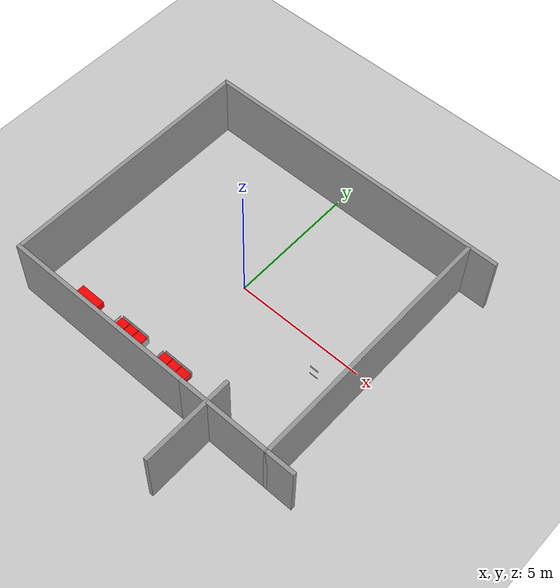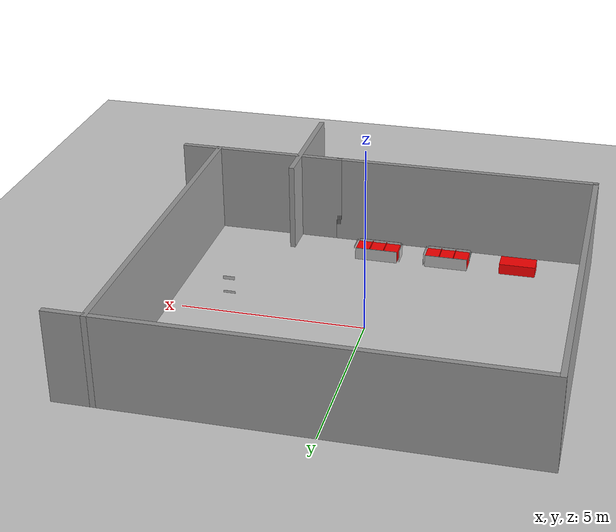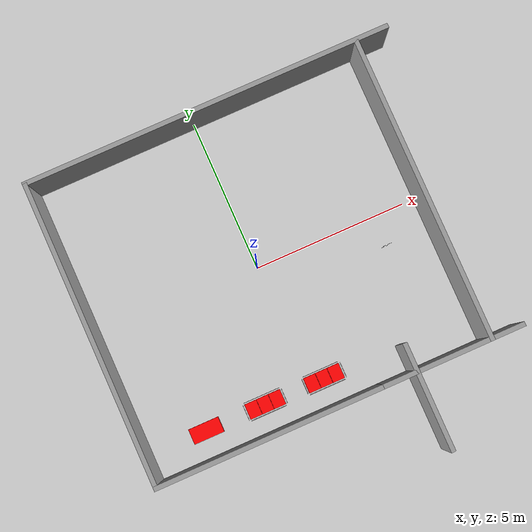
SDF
<sdf version="1.7">
 <world name="default">
  <light name="sun" type="directional">
   <pose>0 0 10 0 -0 0</pose>
   <diffuse>0.8 0.8 0.8 1</diffuse>
   <specular>0.2 0.2 0.2 1</specular>
   <attenuation>
    <range>1000</range>
    <constant>0.9</constant>
    <linear>0.01</linear>
    <quadratic>0.001</quadratic>
   </attenuation>
   <direction>-0.5 0.1 -0.9</direction>
   <spot><inner_angle>0</inner_angle><outer_angle>0</outer_angle><falloff>0</falloff></spot>
  </light>
  <model name="ground_plane">
   <static>1</static>
   <link name="link">
    <collision name="collision">
     <geometry><plane><normal>0 0 1</normal><size>100 100</size></plane></geometry>
     <surface>
      <contact><collide_bitmask>65535</collide_bitmask></contact>
      <friction><ode><mu>100</mu><mu2>50</mu2></ode></friction>
     </surface>
    </collision>
    <visual name="visual">
     <cast_shadows>0</cast_shadows>
     <geometry><plane><normal>0 0 1</normal><size>100 100</size></plane></geometry>
     <material>
      <script><uri>file://media/materials/scripts/gazebo.material</uri><name>Gazebo/Grey</name></script>
     </material>
    </visual>
   </link>
  </model>
  <gravity>0 0 -9.8</gravity>
  <magnetic_field>6e-06 2.3e-05 -4.2e-05</magnetic_field>
  <atmosphere type="adiabatic"/>
  <physics type="ode">
   <max_step_size>0.001</max_step_size>
   <real_time_factor>1</real_time_factor>
   <real_time_update_rate>1000</real_time_update_rate>
  </physics>
  <scene><ambient>0.4 0.4 0.4 1</ambient><background>0.7 0.7 0.7 1</background><shadows>1</shadows></scene>
  <spherical_coordinates>
   <surface_model>EARTH_WGS84</surface_model>
   <latitude_deg>0</latitude_deg>
   <longitude_deg>0</longitude_deg>
   <elevation>0</elevation>
   <heading_deg>0</heading_deg>
  </spherical_coordinates>
  <model name="Untitled_0">
   <pose>0.028612 0.015 0 0 -0 0</pose>
   <link name="Wall_1">
    <collision name="Wall_1_Collision">
     <geometry><box><size>3.5 0.15 2.5</size></box></geometry>
     <pose>0.75 1 1.25 0 -0 0</pose>
    </collision>
    <visual name="Wall_1_Visual">
     <pose>0.75 1 1.25 0 -0 0</pose>
     <geometry><box><size>3.5 0.15 2.5</size></box></geometry>
     <material>
      <script><uri>file://media/materials/scripts/gazebo.material</uri><name>Gazebo/Grey</name></script>
      <ambient>1 1 1 1</ambient>
     </material>
     <meta><layer>0</layer></meta>
    </visual>
    <pose>2.0 -5.0 0 0 -0 -1.5708</pose>
   </link>
   <link name="Wall_2">
    <collision name="Wall_2_Collision">
     <geometry><box><size>4.74979 0.15 2.5</size></box></geometry>
     <pose>0.5 0 1.25 0 -0 0</pose>
    </collision>
    <visual name="Wall_2_Visual">
     <pose>0.5 0 1.25 0 -0 0</pose>
     <geometry><box><size>4.74979 0.15 2.5</size></box></geometry>
     <material>
      <script><uri>file://media/materials/scripts/gazebo.material</uri><name>Gazebo/Grey</name></script>
      <ambient>1 1 1 1</ambient>
     </material>
     <meta><layer>0</layer></meta>
    </visual>
    <pose>3.62512 -4.925 0 0 -0 0</pose>
   </link>
   <link name="Wall_3">
    <collision name="Wall_3_Collision">
     <geometry><box><size>10 0.15 2.5</size></box></geometry>
     <pose>0 0 1.25 0 -0 0</pose>
    </collision>
    <visual name="Wall_3_Visual">
     <pose>0 0 1.25 0 -0 0</pose>
     <geometry><box><size>10 0.15 2.5</size></box></geometry>
     <material>
      <script><uri>file://media/materials/scripts/gazebo.material</uri><name>Gazebo/Grey</name></script>
      <ambient>1 1 1 1</ambient>
     </material>
     <meta><layer>0</layer></meta>
    </visual>
    <pose>5.42499 0 0 0 -0 1.5708</pose>
   </link>
   <link name="Wall_4">
    <collision name="Wall_4_Collision">
     <geometry><box><size>12 0.15 2.5</size></box></geometry>
     <pose>-0.5 0 1.25 0 -0 0</pose>
    </collision>
    <visual name="Wall_4_Visual">
     <pose>-0.5 0 1.25 0 -0 0</pose>
     <geometry><box><size>12 0.15 2.5</size></box></geometry>
     <material>
      <script><uri>file://media/materials/scripts/gazebo.material</uri><name>Gazebo/Grey</name></script>
      <ambient>1 1 1 1</ambient>
     </material>
     <meta><layer>0</layer></meta>
    </visual>
    <pose>-5e-06 4.925 0 0 -0 3.14159</pose>
   </link>
   <link name="Wall_5">
    <collision name="Wall_5_Collision">
     <geometry><box><size>10 0.15 2.5</size></box></geometry>
     <pose>0 0 1.25 0 -0 0</pose>
    </collision>
    <visual name="Wall_5_Visual">
     <pose>0 0 1.25 0 -0 0</pose>
     <geometry><box><size>10 0.15 2.5</size></box></geometry>
     <material>
      <script><uri>file://media/materials/scripts/gazebo.material</uri><name>Gazebo/Grey</name></script>
      <ambient>1 1 1 1</ambient>
     </material>
     <meta><layer>0</layer></meta>
    </visual>
    <pose>-5.42501 0 0 0 -0 -1.5708</pose>
   </link>
   <link name="Wall_6">
    <collision name="Wall_6_Collision">
     <geometry><box><size>7.40028 0.15 2.5</size></box></geometry>
     <pose>0 0 1.25 0 -0 0</pose>
    </collision>
    <visual name="Wall_6_Visual">
     <pose>0 0 1.25 0 -0 0</pose>
     <geometry><box><size>7.40028 0.15 2.5</size></box></geometry>
     <material>
      <script><uri>file://media/materials/scripts/gazebo.material</uri><name>Gazebo/Grey</name></script>
      <ambient>1 1 1 1</ambient>
     </material>
     <meta><layer>0</layer></meta>
    </visual>
    <pose>-1.79988 -4.925 0 0 -0 0</pose>
   </link>
   <static>1</static>
  </model>
  <model name="pallet1">
   <link name="link_1">
    <pose>0.5 -4 0.15 0 0 1.57</pose>
    <visual name="visual">
     <geometry><box><size>0.5 1.2 0.3</size></box></geometry>
     <material><ambient>1 0 0 1</ambient><diffuse>1 0 0 1</diffuse><specular>0.5 0.5 0.5 1</specular></material>
    </visual>
    <collision name="collision"><geometry><box><size>0.5 1.2 0.3</size></box></geometry></collision>
   </link>
   <static>1</static>
  </model>
  <model name="pallet2_1">
   <link name="link_1">
    <pose>0.5 -3.7 0.175 0 0 1.57</pose>
    <visual name="visual"><geometry><box><size>0.01 1.2 0.35</size></box></geometry></visual>
    <collision name="collision"><geometry><box><size>0.01 1 0.5</size></box></geometry></collision>
   </link>
   <static>1</static>
  </model>
  <model name="pallet2_2">
   <link name="link_1">
    <pose>0.5 -4.3 0.175 0 0 1.57</pose>
    <visual name="visual"><geometry><box><size>0.01 1.2 0.35</size></box></geometry></visual>
    <collision name="collision"><geometry><box><size>0.01 1 0.5</size></box></geometry></collision>
   </link>
   <static>1</static>
  </model>
  <model name="pallet2_3">
   <link name="link_1">
    <pose>-0.15 -4.0 0.175 0 0 1.57</pose>
    <visual name="visual"><geometry><box><size>0.5 0.01 0.35</size></box></geometry></visual>
    <collision name="collision"><geometry><box><size>0.5 0.01 0.5</size></box></geometry></collision>
   </link>
   <static>1</static>
  </model>
  <model name="pallet2_4">
   <link name="link_1">
    <pose>0.3 -4.0 0.325 0 0 1.57</pose>
    <visual name="visual">
     <geometry><box><size>0.5 0.01 0.05</size></box></geometry>
     <material><ambient>1 0 0 1</ambient><diffuse>1 0 0 1</diffuse><specular>0.5 0.5 0.5 1</specular></material>
    </visual>
    <collision name="collision"><geometry><box><size>0.5 0.01 0.05</size></box></geometry></collision>
   </link>
   <static>1</static>
  </model>
  <model name="pallet2_5">
   <link name="link_1">
    <pose>0.7 -4.0 0.325 0 0 1.57</pose>
    <visual name="visual">
     <geometry><box><size>0.5 0.01 0.05</size></box></geometry>
     <material><ambient>1 0 0 1</ambient><diffuse>1 0 0 1</diffuse><specular>0.5 0.5 0.5 1</specular></material>
    </visual>
    <collision name="collision"><geometry><box><size>0.5 0.01 0.05</size></box></geometry></collision>
   </link>
   <static>1</static>
  </model>
  <model name="pallet2_6">
   <link name="link_1">
    <pose>1.15 -4.0 0.325 0 0 1.57</pose>
    <visual name="visual"><geometry><box><size>0.5 0.01 0.05</size></box></geometry></visual>
    <collision name="collision"><geometry><box><size>0.5 0.01 0.05</size></box></geometry></collision>
   </link>
   <static>1</static>
  </model>
  <model name="pallet3">
   <link name="link_1">
    <inertial><mass>100</mass><inertia><ixx>9.0833</ixx><iyy>2.8333</iyy><izz>10.4167</izz></inertia></inertial>
    <pose>-1.5 -4 0.15 0 0 1.57</pose>
    <visual name="visual">
     <geometry><box><size>0.5 1.2 0.3</size></box></geometry>
     <material><ambient>1 0 0 1</ambient><diffuse>1 0 0 1</diffuse><specular>0.5 0.5 0.5 1</specular></material>
    </visual>
    <collision name="collision">
     <geometry><box><size>0.5 1.2 0.3</size></box></geometry>
     <surface><bounce><restitution>0.0</restitution><threshold>1e-6</threshold></bounce></surface>
    </collision>
   </link>
   <static>1</static>
  </model>
  <model name="pallet4_1">
   <link name="link_1">
    <inertial><mass>100</mass><inertia><ixx>10.4167</ixx><iyy>2.1667</iyy><izz>8.4167</izz></inertia></inertial>
    <pose>-1.5 -3.7 0.175 0 0 1.57</pose>
    <visual name="visual"><geometry><box><size>0.01 1.2 0.35</size></box></geometry></visual>
    <collision name="collision"><geometry><box><size>0.01 1.2 0.35</size></box></geometry></collision>
   </link>
   <static>1</static>
  </model>
  <model name="pallet4_2">
   <link name="link_1">
    <inertial><mass>100</mass><inertia><ixx>10.4167</ixx><iyy>2.1667</iyy><izz>8.4167</izz></inertia></inertial>
    <pose>-1.5 -4.3 0.175 0 0 1.57</pose>
    <visual name="visual"><geometry><box><size>0.01 1.2 0.35</size></box></geometry></visual>
    <collision name="collision"><geometry><box><size>0.01 1.2 0.35</size></box></geometry></collision>
   </link>
   <static>1</static>
  </model>
  <model name="pallet4_3">
   <link name="link_1">
    <pose>-0.85 -4.0 0.175 0 0 1.57</pose>
    <visual name="visual"><geometry><box><size>0.5 0.01 0.35</size></box></geometry></visual>
    <collision name="collision"><geometry><box><size>0.5 0.01 0.5</size></box></geometry></collision>
   </link>
   <static>1</static>
  </model>
  <model name="pallet4_4">
   <link name="link_1">
    <pose>-1.3 -4.0 0.325 0 0 1.57</pose>
    <visual name="visual">
     <geometry><box><size>0.5 0.01 0.05</size></box></geometry>
     <material><ambient>1 0 0 1</ambient><diffuse>1 0 0 1</diffuse><specular>0.5 0.5 0.5 1</specular></material>
    </visual>
    <collision name="collision"><geometry><box><size>0.5 0.01 0.05</size></box></geometry></collision>
   </link>
   <static>1</static>
  </model>
  <model name="pallet4_5">
   <link name="link_1">
    <pose>-1.7 -4.0 0.325 0 0 1.57</pose>
    <visual name="visual">
     <geometry><box><size>0.5 0.01 0.05</size></box></geometry>
     <material><ambient>1 0 0 1</ambient><diffuse>1 0 0 1</diffuse><specular>0.5 0.5 0.5 1</specular></material>
    </visual>
    <collision name="collision"><geometry><box><size>0.5 0.01 0.05</size></box></geometry></collision>
   </link>
   <static>1</static>
  </model>
  <model name="pallet4_6">
   <link name="link_1">
    <pose>-2.15 -4.0 0.325 0 0 1.57</pose>
    <visual name="visual"><geometry><box><size>0.5 0.01 0.05</size></box></geometry></visual>
    <collision name="collision"><geometry><box><size>0.5 0.01 0.05</size></box></geometry></collision>
   </link>
   <static>1</static>
  </model>
  <model name="pallet5">
   <link name="link_1">
    <inertial><mass>100</mass><inertia><ixx>9.0833</ixx><iyy>2.8333</iyy><izz>10.4167</izz></inertia></inertial>
    <pose>-3.5 -4 0.15 0 0 1.57</pose>
    <visual name="visual">
     <geometry><box><size>0.5 1 0.3</size></box></geometry>
     <material><ambient>1 0 0 1</ambient><diffuse>1 0 0 1</diffuse><specular>0.5 0.5 0.5 1</specular></material>
    </visual>
    <collision name="collision">
     <geometry><box><size>0.5 1 0.3</size></box></geometry>
     <surface><bounce><restitution>0.0</restitution><threshold>1e-6</threshold></bounce></surface>
    </collision>
   </link>
   <static>0</static>
  </model>
  <model name="number">
   <link name="link_1">
    <inertial>
     <mass>1</mass>
     <inertia>
      <ixx>0.166667</ixx>
      <ixy>0</ixy>
      <ixz>0</ixz>
      <iyy>0.166667</iyy>
      <iyz>0</iyz>
      <izz>0.166667</izz>
     </inertia>
    </inertial>
    <pose>4 -1 0 0 0 0</pose>
    <visual name="visual">
     <geometry><box><size>0.332 0.000000000000001 0.1</size></box></geometry>
     <material>
      <lighting>1</lighting>
      <script>
       <uri>file://usr/share/gazebo-11/media/materials/scripts/aruco.material</uri>
       <name>Gazebo/num1</name>
      </script>
      <shader type="pixel"/>
     </material>
    </visual>
    <collision name="collision"><geometry><box><size>0.332 0.001 0.1</size></box></geometry></collision>
   </link>
   <static>1</static>
  </model>
  <model name="number2">
   <link name="link_1">
    <inertial>
     <mass>1</mass>
     <inertia>
      <ixx>0.166667</ixx>
      <ixy>0</ixy>
      <ixz>0</ixz>
      <iyy>0.166667</iyy>
      <iyz>0</iyz>
      <izz>0.166667</izz>
     </inertia>
    </inertial>
    <pose>4 -1 0.45 0 0 0</pose>
    <visual name="visual">
     <geometry><box><size>0.332 0.000000000000001 0.1</size></box></geometry>
     <material>
      <lighting>1</lighting>
      <script>
       <uri>file://usr/share/gazebo-11/media/materials/scripts/aruco2.material</uri>
       <name>Gazebo/num2</name>
      </script>
      <shader type="pixel"/>
     </material>
    </visual>
    <collision name="collision"><geometry><box><size>0.332 0.001 0.1</size></box></geometry></collision>
   </link>
   <static>1</static>
  </model>
 </world>
</sdf>
